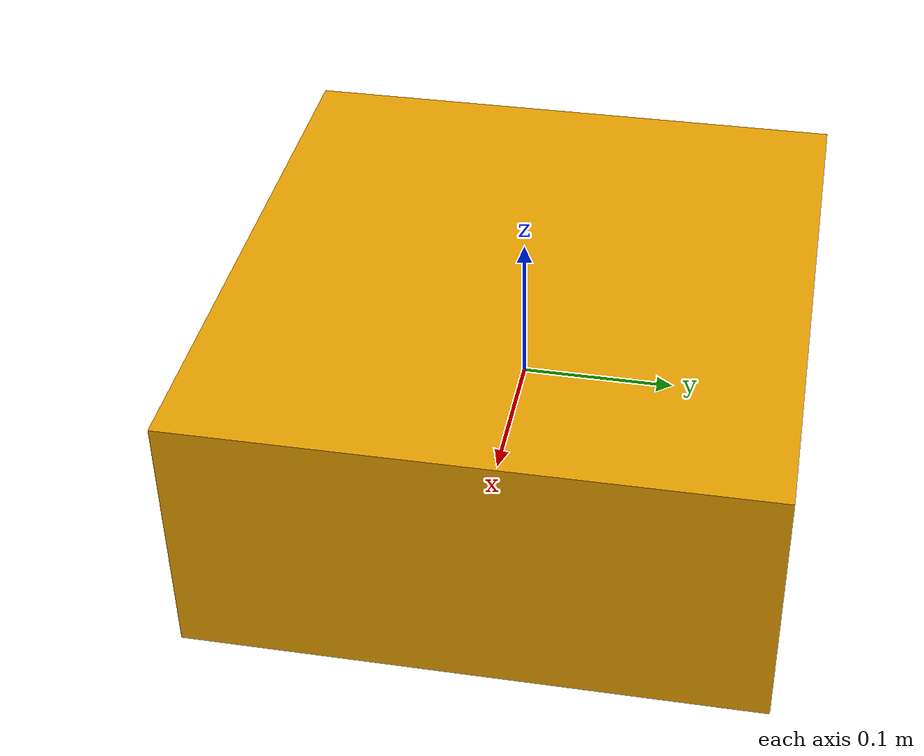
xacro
<?xml version="1.0"?>
<robot xmlns:xacro="http://ros.org/wiki/xacro" name="my_robot">

  <!-- Base -->
  <link name="base_link">
    <visual>
      <geometry>
        <box size="0.4 0.37 0.17"/>
      </geometry>
      <origin xyz="0 0 0"/>
    </visual>
  </link>

  <!-- IMU -->
  <link name="imu_link"/>
  <joint name="imu_joint" type="fixed">
    <parent link="base_link"/>
    <child link="imu_link"/>
    <origin xyz="-0.07 0.0 0.05" rpy="0 0 0"/>
  </joint>

  <!-- GPS -->
  <link name="gps_link"/>
  <joint name="gps_joint" type="fixed">
    <parent link="base_link"/>
    <child link="gps_link"/>
    <origin xyz="0.0 0.05 0.05" rpy="0 0 0"/>
  </joint>

  <!-- Lidar -->
  <link name="lidar_link"/>
  <joint name="lidar_joint" type="fixed">
    <parent link="base_link"/>
    <child link="lidar_link"/>
    <origin xyz="0 0 0.21" rpy="0 0 0"/>
  </joint>

</robot>
